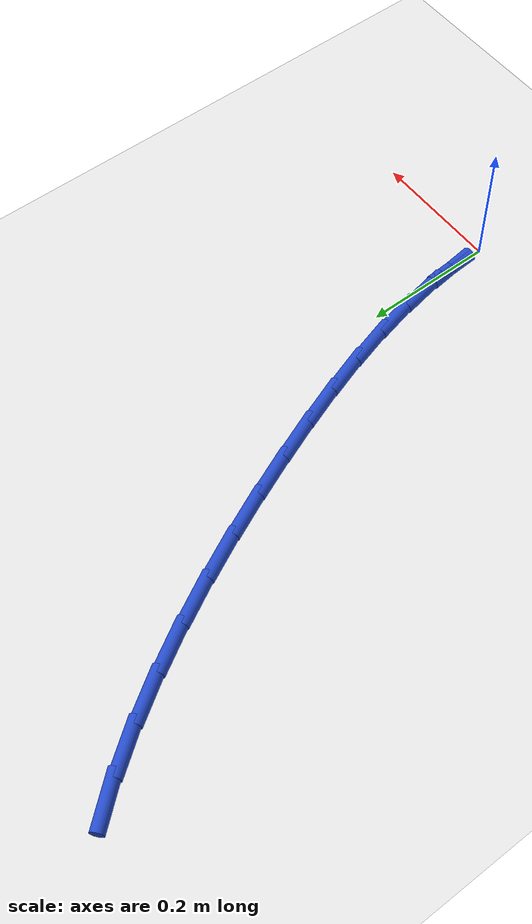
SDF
<sdf version="1.6">
 <world name="default">
  <model name="ground_plane">
   <static>1</static>
   <link name="link">
    <collision name="collision">
     <geometry><plane><normal>0 0 1</normal><size>100 100</size></plane></geometry>
     <surface><friction><ode><mu>100</mu><mu2>50</mu2></ode></friction></surface>
    </collision>
    <visual name="visual">
     <cast_shadows>0</cast_shadows>
     <geometry><plane><normal>0 0 1</normal><size>100 100</size></plane></geometry>
     <material>
      <script><uri>file://media/materials/scripts/gazebo.material</uri><name>Gazebo/WhiteGlow</name></script>
     </material>
    </visual>
   </link>
  </model>
  <model name="line">
   <link name="link_1">
    <pose>-0.003391025684316576 0.060618278654423485 0.01 0 1.57 -1.4496993378417187</pose>
    <collision name="collision">
     <geometry><cylinder><radius>0.01</radius><length>0.08</length></cylinder></geometry>
    </collision>
    <visual name="visual">
     <material>
      <script><name>Gazebo/Blue</name><uri>file://media/materials/scripts/gazebo.material</uri></script>
     </material>
     <geometry><cylinder><radius>0.01</radius><length>0.08</length></cylinder></geometry>
    </visual>
   </link>
   <link name="link_2">
    <pose>-0.010662275820114872 0.12036932916272616 0.01 0 1.57 -1.3890834947076416</pose>
    <collision name="collision">
     <geometry><cylinder><radius>0.01</radius><length>0.08</length></cylinder></geometry>
    </collision>
    <visual name="visual">
     <material>
      <script><name>Gazebo/Blue</name><uri>file://media/materials/scripts/gazebo.material</uri></script>
     </material>
     <geometry><cylinder><radius>0.01</radius><length>0.08</length></cylinder></geometry>
    </visual>
   </link>
   <link name="link_3">
    <pose>-0.021543087408847736 0.17958797189334733 0.01 0 1.57 -1.3343759105804796</pose>
    <collision name="collision">
     <geometry><cylinder><radius>0.01</radius><length>0.08</length></cylinder></geometry>
    </collision>
    <visual name="visual">
     <material>
      <script><name>Gazebo/Blue</name><uri>file://media/materials/scripts/gazebo.material</uri></script>
     </material>
     <geometry><cylinder><radius>0.01</radius><length>0.08</length></cylinder></geometry>
    </visual>
   </link>
   <link name="link_4">
    <pose>-0.035762797451968004 0.23860902721472663 0.01 0 1.57 -1.2864812762798694</pose>
    <collision name="collision">
     <geometry><cylinder><radius>0.01</radius><length>0.08</length></cylinder></geometry>
    </collision>
    <visual name="visual">
     <material>
      <script><name>Gazebo/Blue</name><uri>file://media/materials/scripts/gazebo.material</uri></script>
     </material>
     <geometry><cylinder><radius>0.01</radius><length>0.08</length></cylinder></geometry>
    </visual>
   </link>
   <link name="link_5">
    <pose>-0.0530507429509285 0.29776731549530344 0.01 0 1.57 -1.245898616535885</pose>
    <collision name="collision">
     <geometry><cylinder><radius>0.01</radius><length>0.08</length></cylinder></geometry>
    </collision>
    <visual name="visual">
     <material>
      <script><name>Gazebo/Blue</name><uri>file://media/materials/scripts/gazebo.material</uri></script>
     </material>
     <geometry><cylinder><radius>0.01</radius><length>0.08</length></cylinder></geometry>
    </visual>
   </link>
   <link name="link_6">
    <pose>-0.07313626090718207 0.35739765710351734 0.01 0 1.57 -1.212773344431967</pose>
    <collision name="collision">
     <geometry><cylinder><radius>0.01</radius><length>0.08</length></cylinder></geometry>
    </collision>
    <visual name="visual">
     <material>
      <script><name>Gazebo/Blue</name><uri>file://media/materials/scripts/gazebo.material</uri></script>
     </material>
     <geometry><cylinder><radius>0.01</radius><length>0.08</length></cylinder></geometry>
    </visual>
   </link>
   <link name="link_7">
    <pose>-0.0957486883221815 0.41783487240780764 0.01 0 1.57 -1.1869520352477847</pose>
    <collision name="collision">
     <geometry><cylinder><radius>0.01</radius><length>0.08</length></cylinder></geometry>
    </collision>
    <visual name="visual">
     <material>
      <script><name>Gazebo/Blue</name><uri>file://media/materials/scripts/gazebo.material</uri></script>
     </material>
     <geometry><cylinder><radius>0.01</radius><length>0.08</length></cylinder></geometry>
    </visual>
   </link>
   <link name="link_8">
    <pose>-0.12061802162541467 0.4794113492156692 0.01 0 1.57 -1.16493782982437</pose>
    <collision name="collision">
     <geometry><cylinder><radius>0.01</radius><length>0.08</length></cylinder></geometry>
    </collision>
    <visual name="visual">
     <material>
      <script><name>Gazebo/Blue</name><uri>file://media/materials/scripts/gazebo.material</uri></script>
     </material>
     <geometry><cylinder><radius>0.01</radius><length>0.08</length></cylinder></geometry>
    </visual>
   </link>
   <link name="link_9">
    <pose>-0.14756576500865215 0.5421219127851504 0.01 0 1.57 -1.1399345608386873</pose>
    <collision name="collision">
     <geometry><cylinder><radius>0.01</radius><length>0.08</length></cylinder></geometry>
    </collision>
    <visual name="visual">
     <material>
      <script><name>Gazebo/Blue</name><uri>file://media/materials/scripts/gazebo.material</uri></script>
     </material>
     <geometry><cylinder><radius>0.01</radius><length>0.08</length></cylinder></geometry>
    </visual>
   </link>
   <link name="link_10">
    <pose>-0.1765978233390234 0.6052811535992264 0.01 0 1.57 -1.1106681884390053</pose>
    <collision name="collision">
     <geometry><cylinder><radius>0.01</radius><length>0.08</length></cylinder></geometry>
    </collision>
    <visual name="visual">
     <material>
      <script><name>Gazebo/Blue</name><uri>file://media/materials/scripts/gazebo.material</uri></script>
     </material>
     <geometry><cylinder><radius>0.01</radius><length>0.08</length></cylinder></geometry>
    </visual>
   </link>
   <link name="link_11">
    <pose>-0.20774225083858447 0.6681219554907366 0.01 0 1.57 -1.07645301825751</pose>
    <collision name="collision">
     <geometry><cylinder><radius>0.01</radius><length>0.08</length></cylinder></geometry>
    </collision>
    <visual name="visual">
     <material>
      <script><name>Gazebo/Blue</name><uri>file://media/materials/scripts/gazebo.material</uri></script>
     </material>
     <geometry><cylinder><radius>0.01</radius><length>0.08</length></cylinder></geometry>
    </visual>
   </link>
   <link name="link_12">
    <pose>-0.24102710172939124 0.7298772022925204 0.01 0 1.57 -1.0363911598341988</pose>
    <collision name="collision">
     <geometry><cylinder><radius>0.01</radius><length>0.08</length></cylinder></geometry>
    </collision>
    <visual name="visual">
     <material>
      <script><name>Gazebo/Blue</name><uri>file://media/materials/scripts/gazebo.material</uri></script>
     </material>
     <geometry><cylinder><radius>0.01</radius><length>0.08</length></cylinder></geometry>
    </visual>
   </link>
   <link name="link_13">
    <pose>-0.2764804302334998 0.7897797778374169 0.01 0 1.57 -0.9893322007521056</pose>
    <collision name="collision">
     <geometry><cylinder><radius>0.01</radius><length>0.08</length></cylinder></geometry>
    </collision>
    <visual name="visual">
     <material>
      <script><name>Gazebo/Blue</name><uri>file://media/materials/scripts/gazebo.material</uri></script>
     </material>
     <geometry><cylinder><radius>0.01</radius><length>0.08</length></cylinder></geometry>
    </visual>
   </link>
   <link name="link_14">
    <pose>-0.3141302905729661 0.847062565958266 0.01 0 1.57 -0.9338280101277363</pose>
    <collision name="collision">
     <geometry><cylinder><radius>0.01</radius><length>0.08</length></cylinder></geometry>
    </collision>
    <visual name="visual">
     <material>
      <script><name>Gazebo/Blue</name><uri>file://media/materials/scripts/gazebo.material</uri></script>
     </material>
     <geometry><cylinder><radius>0.01</radius><length>0.08</length></cylinder></geometry>
    </visual>
   </link>
   <link name="link_15">
    <pose>-0.354004736969846 0.9009584504879063 0.01 0 1.57 -0.8680965163769367</pose>
    <collision name="collision">
     <geometry><cylinder><radius>0.01</radius><length>0.08</length></cylinder></geometry>
    </collision>
    <visual name="visual">
     <material>
      <script><name>Gazebo/Blue</name><uri>file://media/materials/scripts/gazebo.material</uri></script>
     </material>
     <geometry><cylinder><radius>0.01</radius><length>0.08</length></cylinder></geometry>
    </visual>
   </link>
   <link name="link_131">
    <pose>-0.0034360937124575594 0.06046344328420217 0.01 0 1.57 -1.5140281103967197</pose>
    <collision name="collision">
     <geometry><cylinder><radius>0.01</radius><length>0.08</length></cylinder></geometry>
    </collision>
    <visual name="visual">
     <material>
      <script><name>Gazebo/Blue</name><uri>file://media/materials/scripts/gazebo.material</uri></script>
     </material>
     <geometry><cylinder><radius>0.01</radius><length>0.08</length></cylinder></geometry>
    </visual>
   </link>
  </model>
 </world>
</sdf>
